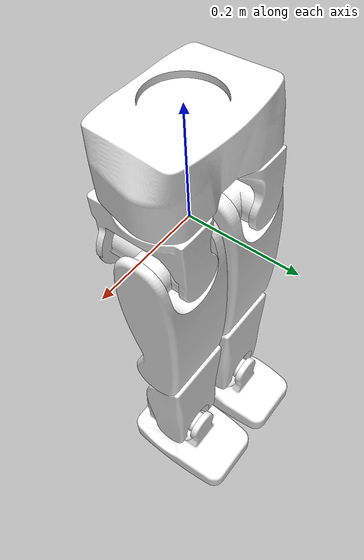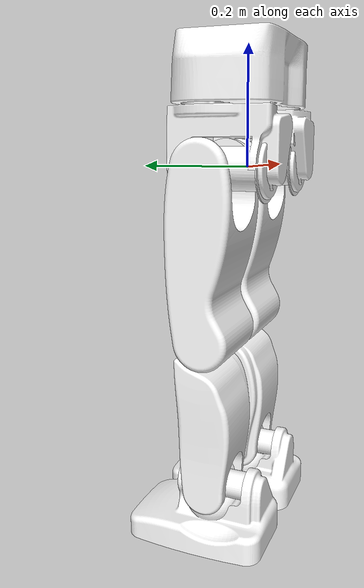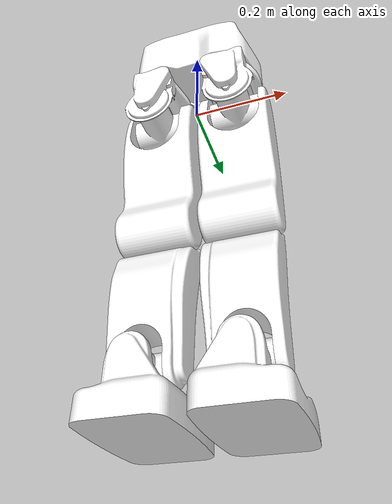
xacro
<?xml version="1.0"?>
<robot xmlns:xacro="http://www.ros.org/wiki/xacro" name="ar600">

	<xacro:property name="d2r" value="0.01745329251994329577"/>

	<xacro:include filename="meshes.xacro"/>
	<xacro:include filename="left_right.xacro"/>
	<xacro:include filename="lr_limit.xacro"/>
	<xacro:include filename="transmission_block.xacro"/>

	<xacro:include filename="pelvis.xacro"/>
	<xacro:include filename="leg.xacro"/>
	<xacro:include filename="torso.xacro"/>
	<xacro:include filename="head_and_neck.xacro"/>

	<xacro:pelvis/>
	<!-- Pelvis - base_link -->
	<xacro:leg parent="base_link" side="left"/>
	<xacro:leg parent="base_link" side="right"/>

  	<gazebo>
    	<plugin name="gazebo_ros_control" filename="libgazebo_ros_control.so">
    	</plugin>
  	</gazebo>

</robot>

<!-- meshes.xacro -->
<!-- Create visual and collision with given mesh -->
<robot xmlns:xacro="http://www.ros.org/wiki/xacro">
	<xacro:macro name="meshes" params="file xyz:='0 0 0' rpy:='0 0 0' collision='False'">
		<visual>
 			<origin xyz="${xyz}" rpy="${rpy}"/>
 			<geometry>
 				<mesh filename="package://ar600_description/meshes/visual/${file}.stl"/>
 			</geometry>
 			<material name="white">
       			<color rgba="1.0 1.0 1.0 1.0"/>
     		</material>
	 	</visual>
	 	<xacro:if value="${collision}">
	 		<collision>
	 			<origin xyz="${xyz}" rpy="${rpy}"/>
	 			<geometry>
 					<mesh filename="package://ar600_description/meshes/collision/${file}.stl"/>
 				</geometry>
	 		</collision>
	 	</xacro:if>
	</xacro:macro>
</robot>

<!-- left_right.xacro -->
<!-- Change Y-axis sign based on left/right side to allow mirror parts -->
<robot xmlns:xacro="http://www.ros.org/wiki/xacro">

	<xacro:macro name="left_right" params="side">
		<xacro:if value="${side == 'left'}">
  			<xacro:property scope="parent" name="x_sign" value="-1" />
		</xacro:if>
		<xacro:if value="${side == 'right'}">
  			<xacro:property scope="parent" name="x_sign" value="1" />
		</xacro:if>
 	</xacro:macro>

</robot>

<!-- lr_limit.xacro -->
<!-- Revolute joint limit changing based on left/right side to allow mirror part -->
<robot xmlns:xacro="http://www.ros.org/wiki/xacro">

	<xacro:macro name="lr_limit" params="side lower upper effort velocity">
  			<limit lower="${lower}" upper="${upper}" effort="${effort}" velocity="${velocity}"/>
 	</xacro:macro>

</robot>

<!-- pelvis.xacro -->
<robot xmlns:xacro="http://www.ros.org/wiki/xacro">

	<!--
		Solid Works conversion
		x <- z
		y <- x
		z <- z
	-->

	<xacro:macro name="pelvis">

		<link name="base_link">
			<!-- this shift is WTF and hack -->
	 		<xacro:meshes file="pelvis" xyz="0 0.0276 0" collision="True"/>
	 		<inertial>
	 			<!-- z origin is incorrect -->
	 			<origin xyz="0 0 0.15" rpy="0 0 0"/>
      			<mass value="4.127"/>
      			<inertia ixx="0.011960" ixy="-0.000003" ixz="0.000002"
      				                    iyy="0.028330" iyz="0.000108"
      				                                   izz="0.033849"/>
    		</inertial>
	 	</link>

 	</xacro:macro>
</robot>

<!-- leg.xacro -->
<robot xmlns:xacro="http://www.ros.org/wiki/xacro">

	<!--
		Solid Works conversion
		x <- z
		y <- x
		z <- y
	-->

	<xacro:macro name="leg" params="parent side">

		<xacro:left_right side="${side}"/>

		<!-- Links -->
		<link name="hip_fork_${side}">
	 		<xacro:meshes file="hip_fork_${side}" collision="True"/>
	 		<inertial>
	 			<origin xyz="${-0.02 * x_sign} 0 0.07" rpy="0 0 0"/>
      			<mass value="0.907"/>
      			<inertia ixx="0.004196" ixy="${-x_sign * 0.000201}" ixz="${-x_sign * 0.000014}"
      				                    iyy="0.001524"  iyz="-0.000269"
      				                                    izz="0.003769"/>
    		</inertial>
	 	</link>

	 	<link name="hip_cross_${side}">
	 		<xacro:meshes file="hip_cross_${side}"/>
	 		<inertial>
	 			<origin xyz="${-0.03 * x_sign} 0.01 0.00" rpy="0 0 0"/>
      			<mass value="0.754"/>
      			<inertia ixx="0.001265" ixy="0.000000" ixz="0.000000"
      				                    iyy="0.000786" iyz="0.000000"
      				                                   izz="0.001560"/>
    		</inertial>
	 	</link>

	 	<link name="hip_${side}">
	 		<xacro:meshes file="hip_${side}" collision="True"/>
	 		<inertial>
	 			<origin xyz="${0.01 * x_sign} 0.00 -0.14" rpy="0 0 0"/>
      			<mass value="4.04"/>
						<inertia ixx="0.035175" ixy="-0.000067" ixz="0.000877"
      				                    iyy="0.040670" iyz="-0.000379"
      				                                   izz="0.011745"/>
    		</inertial>
	 	</link>

	 	<link name="shin_${side}">
	 		<xacro:meshes file="shin_${side}" collision="True"/>
	 		<inertial>
	 			<origin xyz="0.00 0.01 -0.11" rpy="0 0 0"/>
      			<mass value="2.24"/>
						<inertia ixx="0.011381" ixy="0.000079" ixz="0.000000"
      				                    iyy="0.013862" iyz="-0.000663"
      				                                   izz="0.005662"/>
    		</inertial>
	 	</link>

	 	<link name="ankle_${side}">
	 		<xacro:meshes file="ankle_${side}"/>
	 		<inertial>
	 			<origin xyz="${-0.02 * x_sign} 0.01 0.00" rpy="0 0 0"/>
      			<mass value="0.297"/>
      			<inertia ixx="0.000283" ixy="0.000000" ixz="0.000000"
      				                    iyy="0.000161"  iyz="0.000000"
      				                                    izz="0.000346"/>
    		</inertial>
	 	</link>

	 	<link name="foot_${side}">
	 		<xacro:meshes file="foot_${side}" collision="True"/>
	 		<inertial>
	 			<origin xyz="${0.03 * x_sign} 0.00 -0.06" rpy="0 0 0"/>
      			<mass value="2.2"/>
						<inertia ixx="0.013004" ixy="-0.000212" ixz="0.000096"
      															iyy="0.005467" iyz="0.001058"
      				                                  		izz="0.015293"/>
    		</inertial>
	 	</link>

		<gazebo reference="foot_${side}">
			<kp>100000.0</kp>
			<kd>100.0</kd>
			<mu1>0.9</mu1>
			<mu2>0.09</mu2>
			<fdir1>1 1 0</fdir1>
			<maxVel>1.0</maxVel>
			<minDepth>0.0001</minDepth>
		</gazebo>

	 	<!-- hip z rotate (vertical)-->
	 	<joint name="hip_r_joint_${side}"
	 		   type="revolute">
	 		<parent link="${parent}"/>
	 		<child link="hip_fork_${side}"/>
	 		<origin xyz="${0.088 * x_sign} 0.0276 0" rpy="0 0 0"/>
	 		<axis xyz="0 0 ${-x_sign}"/>
	 		<limit lower="${-20*d2r}" upper="${20*d2r}" effort="1000" velocity="10"/>
			 <dynamics damping="0.1" friction="0.0"/>
	 	</joint>

	 	<!-- hip y rotate (side)-->
	 	<joint name="hip_s_joint_${side}"
	 		   type="revolute">
	 		<parent link="hip_fork_${side}"/>
	 		<child link="hip_cross_${side}"/>
	 		<origin xyz="0 0 0" rpy="0 0 0"/>
	 		<axis xyz="0 ${-x_sign} 0"/>
	 		<xacro:lr_limit side="${side}" lower="${-25*d2r}" upper="${25*d2r}" effort="1000" velocity="10"/>
			 <dynamics damping="0.1" friction="0.0"/>
	 	</joint>

	 	<!-- hip x rotate (forward)-->
	 	<joint name="hip_f_joint_${side}"
	 		   type="revolute">
	 		<parent link="hip_cross_${side}"/>
	 		<child link="hip_${side}"/>
	 		<origin xyz="0 0 0" rpy="${ 0 * d2r} 0 0"/>
	 		<axis xyz="1 0 0"/>
	 		<limit lower="${-45*d2r}" upper="${70*d2r}" effort="1000" velocity="10"/>
			<dynamics damping="0.1" friction="0.0"/>
	 	</joint>

	 	<!-- knee -->
	 	<joint name="knee_joint_${side}"
	 		   type="revolute">
	 		<parent link="hip_${side}"/>
	 		<child link="shin_${side}"/>
	 		<origin xyz="0 0 -0.28" rpy="0 0 0"/>
	 		<axis xyz="1 0 0"/>
	 		<limit lower="${-140*d2r}" upper="0" effort="1000" velocity="10"/>
			 <dynamics damping="0.1" friction="0.0"/>
	 	</joint>

	 	<!-- ankle x (forward) -->
	 	<joint name="ankle_f_joint_${side}"
	 		   type="revolute">
	 		<parent link="shin_${side}"/>
	 		<child link="ankle_${side}"/>
	 		<origin xyz="0 0 -0.28" rpy="0 0 0"/>
	 		<axis xyz="1 0 0"/>
	 		<limit lower="${-70*d2r}" upper="${70*d2r}" effort="1000" velocity="10"/>
			 <dynamics damping="0.1" friction="0.0"/>
	 	</joint>

	 	<!-- ankle y (side) -->
	 	<joint name="ankle_s_joint_${side}"
	 		   type="revolute">
	 		<parent link="ankle_${side}"/>
	 		<child link="foot_${side}"/>
	 		<origin xyz="0 0 0" rpy="0 0 0"/>
	 		<axis xyz="0 ${-x_sign} 0"/>
	 		<xacro:lr_limit side="${side}" lower="${-25*d2r}" upper="${25*d2r}" effort="1000" velocity="10"/>
			<dynamics damping="0.1" friction="0.0"/>
	 	</joint>

	 	<xacro:transmission_block joint_name="hip_r_joint_${side}"/>
	 	<xacro:transmission_block joint_name="hip_s_joint_${side}"/>
	 	<xacro:transmission_block joint_name="hip_f_joint_${side}"/>
	 	<xacro:transmission_block joint_name="knee_joint_${side}"/>
	 	<xacro:transmission_block joint_name="ankle_f_joint_${side}"/>
	 	<xacro:transmission_block joint_name="ankle_s_joint_${side}"/>

 	</xacro:macro>

</robot>
